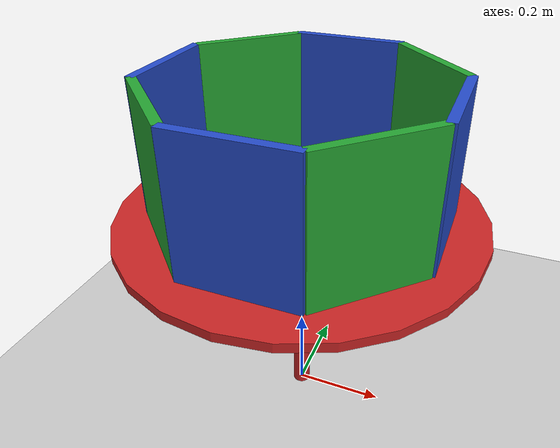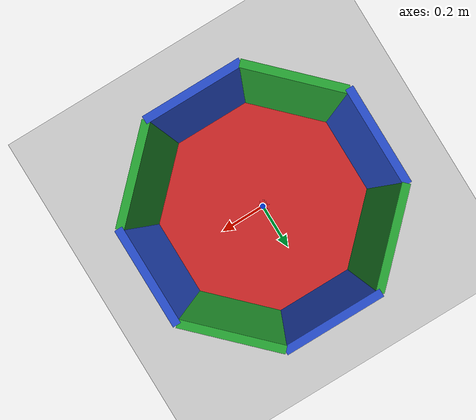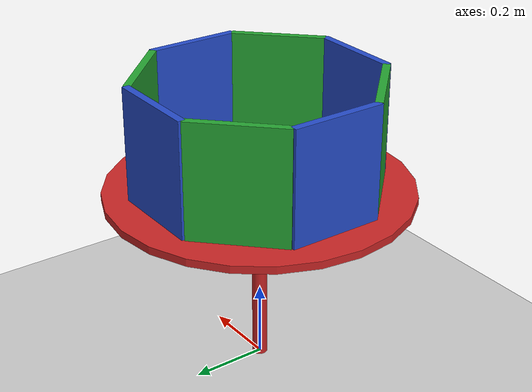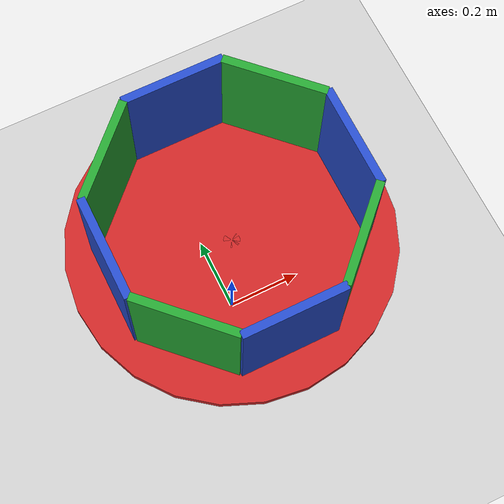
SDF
<?xml version="1.0"?>
<sdf version="1.5">
  <world name="default">
    <light name='sun' type='directional'>
      <cast_shadows>1</cast_shadows>
      <pose>0 0 10 0 -0 0</pose>
      <diffuse>0.8 0.8 0.8 1</diffuse>
      <specular>0.1 0.1 0.1 1</specular>
      <attenuation>
        <range>1000</range>
        <constant>0.9</constant>
        <linear>0.01</linear>
        <quadratic>0.001</quadratic>
      </attenuation>
      <direction>-0.5 0.5 -1</direction>
    </light>
    <model name='ground_plane'>
      <static>1</static>
      <link name='link'>
        <collision name='collision'>
          <geometry>
            <plane>
              <normal>0 0 1</normal>
              <size>100 100</size>
            </plane>
          </geometry>
          <surface>
            <friction>
              <ode>
                <mu>100</mu>
                <mu2>50</mu2>
              </ode>
            </friction>
            <contact>
              <ode/>
            </contact>
            <bounce/>
          </surface>
          <max_contacts>10</max_contacts>
        </collision>
        <visual name='visual'>
          <cast_shadows>0</cast_shadows>
          <geometry>
            <plane>
              <normal>0 0 1</normal>
              <size>100 100</size>
            </plane>
          </geometry>
          <material>
            <script>
              <uri>file://media/materials/scripts/gazebo.material</uri>
              <name>Gazebo/Grey</name>
            </script>
          </material>
        </visual>
        <velocity_decay>
          <linear>0</linear>
          <angular>0</angular>
        </velocity_decay>
        <self_collide>0</self_collide>
        <kinematic>0</kinematic>
        <gravity>1</gravity>
      </link>
    </model>
    <physics type='ode'>
      <max_step_size>0.001</max_step_size>
      <real_time_factor>1</real_time_factor>
      <real_time_update_rate>1000</real_time_update_rate>
      <gravity>0 0 -9.81</gravity>
    </physics>
    <scene>
      <ambient>0.4 0.4 0.4 1</ambient>
      <background>0.7 0.7 0.7 1</background>
      <shadows>1</shadows>
      <grid>true</grid>
      <origin_visual>true</origin_visual>
    </scene>

    <model name="Table">
      <pose>0 0 0.5 0 0 0</pose>
      <static>true</static>

      <link name="boardLink">
	<pose>0 0 -0.01 0 0 0 </pose>
        <collision name="boardCollision">
          <geometry>
            <cylinder>
              <radius>0.4</radius>
              <length>0.02</length>
            </cylinder>
          </geometry>
          <surface>
            <friction>
              <ode>
                <mu>0.9</mu>
                <mu2>0.9</mu2>
              </ode>
            </friction>
            <contact>
              <ode/>
            </contact>
            <bounce/>
          </surface>
        </collision>
        <visual name="boardVisual">
          <geometry>
            <cylinder>
              <radius>0.4</radius>
              <length>0.02</length>
            </cylinder>
          </geometry>
          <material>
            <script>
              <name>Gazebo/Red</name>
              <uri>file://media/materials/scripts/gazebo.material</uri>
            </script>
          </material>
        </visual>
      </link>

      <link name="pillarLink">
	<pose>0 0 -0.25 0 0 0 </pose>
        <collision name="pillarCollision">
          <geometry>
            <cylinder>
              <radius>0.02</radius>
              <length>0.5</length>
            </cylinder>
          </geometry>
          <surface>
            <friction>
              <ode>
                <mu>0</mu>
                <mu2>0</mu2>
              </ode>
            </friction>
            <contact>
              <ode/>
            </contact>
            <bounce/>
          </surface>
        </collision>
        <visual name="pillarVisual">
          <geometry>
            <cylinder>
              <radius>0.02</radius>
              <length>0.5</length>
            </cylinder>
          </geometry>
          <material>
            <script>
              <name>Gazebo/Red</name>
              <uri>file://media/materials/scripts/gazebo.material</uri>
            </script>
          </material>
        </visual>
      </link>
    </model>

    <model name="ObjectBox">
      <pose>0 0 0.65 0 0 0</pose>
      <static>false</static>
      <link name="obLink">
        <inertial>
          <mass>1</mass>
          <inertia>
            <ixx>0.166667</ixx>
            <ixy>0</ixy>
            <ixz>0</ixz>
            <iyy>0.166667</iyy>
            <iyz>0</iyz>
            <izz>0.166667</izz>
          </inertia>
        </inertial>

        <collision name="obCollision0">
         <pose>0.30 0.00 0 0 0 0.0</pose>
          <geometry>
            <box>
              <size>0.02 0.25 0.3</size>
            </box>
          </geometry>
          <surface>
              <friction>
                <ode>
                  <mu>19</mu>
                  <mu2>19</mu2>
                </ode>
              </friction>
        </surface>
        </collision>
        <visual name="obVisual0">
         <pose>0.30 0.00 0 0 0 0.0</pose>
          <geometry>
            <box>
              <size>0.02 0.25 0.3</size>
            </box>
          </geometry>
          <material>
            <script>
              <name>Gazebo/Blue</name>
              <uri>file://media/materials/scripts/gazebo.material</uri>
            </script>
          </material>
        </visual>

        <collision name="obCollision1">
         <pose>0.21 0.21 0 0 0 0.7854</pose>
          <geometry>
            <box>
              <size>0.02 0.25 0.3</size>
            </box>
          </geometry>
          <surface>
              <friction>
                <ode>
                  <mu>19</mu>
                  <mu2>19</mu2>
                </ode>
              </friction>
        </surface>
        </collision>
        <visual name="obVisual1">
         <pose>0.21 0.21 0 0 0 0.7854</pose>
          <geometry>
            <box>
              <size>0.02 0.25 0.3</size>
            </box>
          </geometry>
          <material>
            <script>
              <name>Gazebo/Green</name>
              <uri>file://media/materials/scripts/gazebo.material</uri>
            </script>
          </material>
        </visual>

        <collision name="obCollision2">
         <pose>0.00 0.30 0 0 0 1.5708</pose>
          <geometry>
            <box>
              <size>0.02 0.25 0.3</size>
            </box>
          </geometry>
          <surface>
              <friction>
                <ode>
                  <mu>19</mu>
                  <mu2>19</mu2>
                </ode>
              </friction>
        </surface>
        </collision>
        <visual name="obVisual2">
         <pose>0.00 0.30 0 0 0 1.5708</pose>
          <geometry>
            <box>
              <size>0.02 0.25 0.3</size>
            </box>
          </geometry>
          <material>
            <script>
              <name>Gazebo/Blue</name>
              <uri>file://media/materials/scripts/gazebo.material</uri>
            </script>
          </material>
        </visual>

        <collision name="obCollision3">
         <pose>-0.21 0.21 0 0 0 2.3562</pose>
          <geometry>
            <box>
              <size>0.02 0.25 0.3</size>
            </box>
          </geometry>
          <surface>
              <friction>
                <ode>
                  <mu>19</mu>
                  <mu2>19</mu2>
                </ode>
              </friction>
        </surface>
        </collision>
        <visual name="obVisual3">
         <pose>-0.21 0.21 0 0 0 2.3562</pose>
          <geometry>
            <box>
              <size>0.02 0.25 0.3</size>
            </box>
          </geometry>
          <material>
            <script>
              <name>Gazebo/Green</name>
              <uri>file://media/materials/scripts/gazebo.material</uri>
            </script>
          </material>
        </visual>

        <collision name="obCollision4">
         <pose>-0.30 0.00 0 0 0 0</pose>
          <geometry>
            <box>
              <size>0.02 0.25 0.3</size>
            </box>
          </geometry>
          <surface>
              <friction>
                <ode>
                  <mu>19</mu>
                  <mu2>19</mu2>
                </ode>
              </friction>
        </surface>
        </collision>
        <visual name="obVisual4">
         <pose>-0.30 0.00 0 0 0 0</pose>
          <geometry>
            <box>
              <size>0.02 0.25 0.3</size>
            </box>
          </geometry>
          <material>
            <script>
              <name>Gazebo/Blue</name>
              <uri>file://media/materials/scripts/gazebo.material</uri>
            </script>
          </material>
        </visual>

        <collision name="obCollision5">
         <pose>-0.21 -0.21 0 0 0 -2.3562</pose>
          <geometry>
            <box>
              <size>0.02 0.25 0.3</size>
            </box>
          </geometry>
          <surface>
              <friction>
                <ode>
                  <mu>19</mu>
                  <mu2>19</mu2>
                </ode>
              </friction>
        </surface>
        </collision>
        <visual name="obVisual5">
         <pose>-0.21 -0.21 0 0 0 -2.3562</pose>
          <geometry>
            <box>
              <size>0.02 0.25 0.3</size>
            </box>
          </geometry>
          <material>
            <script>
              <name>Gazebo/Green</name>
              <uri>file://media/materials/scripts/gazebo.material</uri>
            </script>
          </material>
        </visual>

        <collision name="obCollision6">
         <pose>0.00 -0.30 0 0 0 -1.5708</pose>
          <geometry>
            <box>
              <size>0.02 0.25 0.3</size>
            </box>
          </geometry>
          <surface>
              <friction>
                <ode>
                  <mu>19</mu>
                  <mu2>19</mu2>
                </ode>
              </friction>
        </surface>
        </collision>
        <visual name="obVisual6">
         <pose>0.00 -0.30 0 0 0 -1.5708</pose>
          <geometry>
            <box>
              <size>0.02 0.25 0.3</size>
            </box>
          </geometry>
          <material>
            <script>
              <name>Gazebo/Blue</name>
              <uri>file://media/materials/scripts/gazebo.material</uri>
            </script>
          </material>
        </visual>

        <collision name="obCollision7">
         <pose>0.21 -0.21 0 0 0 -0.7854</pose>
          <geometry>
            <box>
              <size>0.02 0.25 0.3</size>
            </box>
          </geometry>
          <surface>
              <friction>
                <ode>
                  <mu>19</mu>
                  <mu2>19</mu2>
                </ode>
              </friction>
        </surface>
        </collision>
        <visual name="obVisual7">
         <pose>0.21 -0.21 0 0 0 -0.7854</pose>
          <geometry>
            <box>
              <size>0.02 0.25 0.3</size>
            </box>
          </geometry>
          <material>
            <script>
              <name>Gazebo/Green</name>
              <uri>file://media/materials/scripts/gazebo.material</uri>
            </script>
          </material>
        </visual>

      </link>
    </model>

    <gui fullscreen='0'>
      <camera name='user_camera'>
        <pose frame=''>-1.74262 -1.74128 3.0625 -0 0.766 0.773001</pose>
        <view_controller>orbit</view_controller>
        <projection_type>perspective</projection_type>
      </camera>
    </gui>
  </world>
</sdf>
